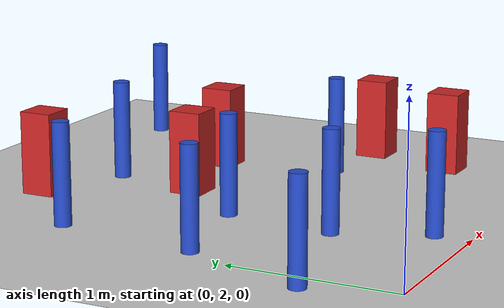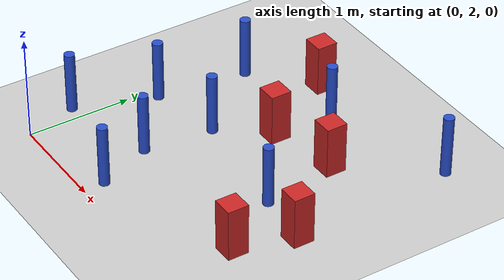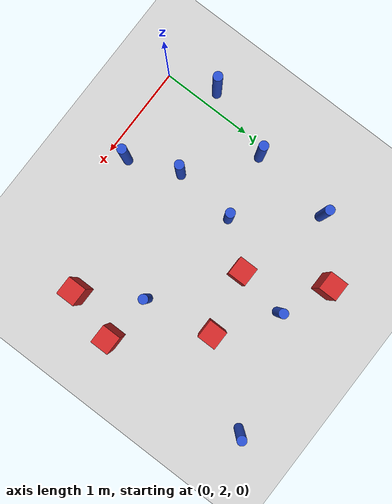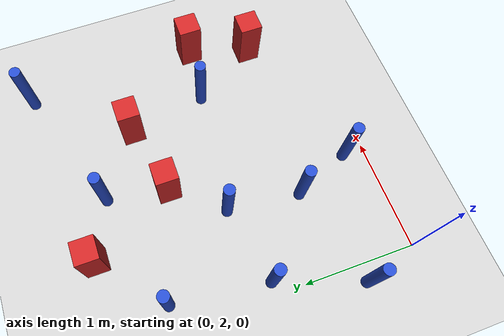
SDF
<sdf version="1.6">
 <world name="default">
  <model name="ground_plane">
   <static>1</static>
   <link name="link">
    <collision name="collision">
     <geometry><plane><normal>0 0 1</normal><size>100 100</size></plane></geometry>
     <surface><friction><ode><mu>100</mu><mu2>50</mu2></ode></friction></surface>
    </collision>
    <visual name="visual">
     <cast_shadows>0</cast_shadows>
     <geometry><plane><normal>0 0 1</normal><size>100 100</size></plane></geometry>
     <material>
      <ambient>1.0 1.0 1.0 1.0</ambient>
      <diffuse>0.8 0.8 0.8 1.0</diffuse>
      <specular>0.01 0.01 0.01 1.000000</specular>
     </material>
    </visual>
   </link>
  </model>
  <model name="square_post_obstacle20">
   <static>true</static>
   <pose>0.76591102103 4.6098551937 8.22691968438e-08 7.2212513382e-06 -7.54495500217e-07 2.29674213826e-05</pose>
   <link name="link">
    <pose>0 0 0.25 0 -0 0</pose>
    <inertial>
     <mass>100</mass>
     <inertia>
      <ixx>0.166667</ixx>
      <ixy>0</ixy>
      <ixz>0</ixz>
      <iyy>0.166667</iyy>
      <iyz>0</iyz>
      <izz>0.166667</izz>
     </inertia>
    </inertial>
    <collision name="collision"><geometry><box><size>.2 .2 .5</size></box></geometry></collision>
    <visual name="visual">
     <geometry><box><size>.2 .2 .5</size></box></geometry>
     <material>
      <script><name>Gazebo/Red</name><uri>file://media/materials/scripts/gazebo.material</uri></script>
     </material>
    </visual>
   </link>
  </model>
  <model name="pole_obstacle21">
   <static>true</static>
   <pose>1.27009599475 4.378853582 2.88873142074e-08 -9.90536689852e-09 4.60219948989e-07 -1.2096599496e-07</pose>
   <link name="link">
    <pose>0 0 0.3 0 -0 0</pose>
    <inertial>
     <mass>1</mass>
     <inertia><ixx>0.145833</ixx><ixy>0</ixy><ixz>0</ixz><iyy>0.145833</iyy><iyz>0</iyz><izz>0.125</izz></inertia>
    </inertial>
    <collision name="collision">
     <geometry><cylinder><radius>0.05</radius><length>.6</length></cylinder></geometry>
    </collision>
    <visual name="visual">
     <geometry><cylinder><radius>0.05</radius><length>.6</length></cylinder></geometry>
     <material>
      <script><name>Gazebo/Blue</name><uri>file://media/materials/scripts/gazebo.material</uri></script>
     </material>
    </visual>
   </link>
  </model>
  <model name="square_post_obstacle34">
   <static>true</static>
   <pose>2.49851427638 3.19317485091 8.22691968438e-08 7.2212513382e-06 -7.54495500217e-07 2.29674213826e-05</pose>
   <link name="link">
    <pose>0 0 0.25 0 -0 0</pose>
    <inertial>
     <mass>100</mass>
     <inertia>
      <ixx>0.166667</ixx>
      <ixy>0</ixy>
      <ixz>0</ixz>
      <iyy>0.166667</iyy>
      <iyz>0</iyz>
      <izz>0.166667</izz>
     </inertia>
    </inertial>
    <collision name="collision"><geometry><box><size>.2 .2 .5</size></box></geometry></collision>
    <visual name="visual">
     <geometry><box><size>.2 .2 .5</size></box></geometry>
     <material>
      <script><name>Gazebo/Red</name><uri>file://media/materials/scripts/gazebo.material</uri></script>
     </material>
    </visual>
   </link>
  </model>
  <model name="pole_obstacle30">
   <static>true</static>
   <pose>0.820039946281 3.40295459279 2.88873142074e-08 -9.90536689636e-09 4.60219948994e-07 -1.20965994958e-07</pose>
   <link name="link">
    <pose>0 0 0.3 0 -0 0</pose>
    <inertial>
     <mass>1</mass>
     <inertia><ixx>0.145833</ixx><ixy>0</ixy><ixz>0</ixz><iyy>0.145833</iyy><iyz>0</iyz><izz>0.125</izz></inertia>
    </inertial>
    <collision name="collision">
     <geometry><cylinder><radius>0.05</radius><length>.6</length></cylinder></geometry>
    </collision>
    <visual name="visual">
     <geometry><cylinder><radius>0.05</radius><length>.6</length></cylinder></geometry>
     <material>
      <script><name>Gazebo/Blue</name><uri>file://media/materials/scripts/gazebo.material</uri></script>
     </material>
    </visual>
   </link>
  </model>
  <model name="pole_obstacle44">
   <static>true</static>
   <pose>0.751218466088 2.73740976181 2.88873142074e-08 -9.90536689636e-09 4.60219948994e-07 -1.20965994958e-07</pose>
   <link name="link">
    <pose>0 0 0.3 0 -0 0</pose>
    <inertial>
     <mass>1</mass>
     <inertia><ixx>0.145833</ixx><ixy>0</ixy><ixz>0</ixz><iyy>0.145833</iyy><iyz>0</iyz><izz>0.125</izz></inertia>
    </inertial>
    <collision name="collision">
     <geometry><cylinder><radius>0.05</radius><length>.6</length></cylinder></geometry>
    </collision>
    <visual name="visual">
     <geometry><cylinder><radius>0.05</radius><length>.6</length></cylinder></geometry>
     <material>
      <script><name>Gazebo/Blue</name><uri>file://media/materials/scripts/gazebo.material</uri></script>
     </material>
    </visual>
   </link>
  </model>
  <model name="pole_obstacle104">
   <static>true</static>
   <pose>0.222548389686 4.13478257113 2.88873142074e-08 -9.90536689491e-09 4.60219948997e-07 -1.20965994955e-07</pose>
   <link name="link">
    <pose>0 0 0.3 0 -0 0</pose>
    <inertial>
     <mass>1</mass>
     <inertia><ixx>0.145833</ixx><ixy>0</ixy><ixz>0</ixz><iyy>0.145833</iyy><iyz>0</iyz><izz>0.125</izz></inertia>
    </inertial>
    <collision name="collision">
     <geometry><cylinder><radius>0.05</radius><length>.6</length></cylinder></geometry>
    </collision>
    <visual name="visual">
     <geometry><cylinder><radius>0.05</radius><length>.6</length></cylinder></geometry>
     <material>
      <script><name>Gazebo/Blue</name><uri>file://media/materials/scripts/gazebo.material</uri></script>
     </material>
    </visual>
   </link>
  </model>
  <model name="pole_obstacle123">
   <static>true</static>
   <pose>1.9674485187 3.24825887018 2.88873142074e-08 -9.90536689941e-09 4.60219948987e-07 -1.20965994961e-07</pose>
   <link name="link">
    <pose>0 0 0.3 0 -0 0</pose>
    <inertial>
     <mass>1</mass>
     <inertia><ixx>0.145833</ixx><ixy>0</ixy><ixz>0</ixz><iyy>0.145833</iyy><iyz>0</iyz><izz>0.125</izz></inertia>
    </inertial>
    <collision name="collision">
     <geometry><cylinder><radius>0.05</radius><length>.6</length></cylinder></geometry>
    </collision>
    <visual name="visual">
     <geometry><cylinder><radius>0.05</radius><length>.6</length></cylinder></geometry>
     <material>
      <script><name>Gazebo/Blue</name><uri>file://media/materials/scripts/gazebo.material</uri></script>
     </material>
    </visual>
   </link>
  </model>
  <model name="square_post_obstacle120">
   <static>true</static>
   <pose>1.83925740022 3.97344979141 8.22691968438e-08 7.2212513382e-06 -7.54495500217e-07 2.29674213826e-05</pose>
   <link name="link">
    <pose>0 0 0.25 0 -0 0</pose>
    <inertial>
     <mass>100</mass>
     <inertia>
      <ixx>0.166667</ixx>
      <ixy>0</ixy>
      <ixz>0</ixz>
      <iyy>0.166667</iyy>
      <iyz>0</iyz>
      <izz>0.166667</izz>
     </inertia>
    </inertial>
    <collision name="collision"><geometry><box><size>.2 .2 .5</size></box></geometry></collision>
    <visual name="visual">
     <geometry><box><size>.2 .2 .5</size></box></geometry>
     <material>
      <script><name>Gazebo/Red</name><uri>file://media/materials/scripts/gazebo.material</uri></script>
     </material>
    </visual>
   </link>
  </model>
  <model name="square_post_obstacle125">
   <static>true</static>
   <pose>2.33424580545 2.65014800814 8.22691968438e-08 7.2212513382e-06 -7.54495500217e-07 2.29674213826e-05</pose>
   <link name="link">
    <pose>0 0 0.25 0 -0 0</pose>
    <inertial>
     <mass>100</mass>
     <inertia>
      <ixx>0.166667</ixx>
      <ixy>0</ixy>
      <ixz>0</ixz>
      <iyy>0.166667</iyy>
      <iyz>0</iyz>
      <izz>0.166667</izz>
     </inertia>
    </inertial>
    <collision name="collision"><geometry><box><size>.2 .2 .5</size></box></geometry></collision>
    <visual name="visual">
     <geometry><box><size>.2 .2 .5</size></box></geometry>
     <material>
      <script><name>Gazebo/Red</name><uri>file://media/materials/scripts/gazebo.material</uri></script>
     </material>
    </visual>
   </link>
  </model>
  <model name="square_post_obstacle127">
   <static>true</static>
   <pose>1.17988550281 3.83633537052 8.22691968438e-08 7.2212513382e-06 -7.54495500217e-07 2.29674213826e-05</pose>
   <link name="link">
    <pose>0 0 0.25 0 -0 0</pose>
    <inertial>
     <mass>100</mass>
     <inertia>
      <ixx>0.166667</ixx>
      <ixy>0</ixy>
      <ixz>0</ixz>
      <iyy>0.166667</iyy>
      <iyz>0</iyz>
      <izz>0.166667</izz>
     </inertia>
    </inertial>
    <collision name="collision"><geometry><box><size>.2 .2 .5</size></box></geometry></collision>
    <visual name="visual">
     <geometry><box><size>.2 .2 .5</size></box></geometry>
     <material>
      <script><name>Gazebo/Red</name><uri>file://media/materials/scripts/gazebo.material</uri></script>
     </material>
    </visual>
   </link>
  </model>
  <model name="pole_obstacle144">
   <static>true</static>
   <pose>0.964892750727 2.21010918374 2.88873142074e-08 -9.90536689802e-09 4.6021994899e-07 -1.2096599496e-07</pose>
   <link name="link">
    <pose>0 0 0.3 0 -0 0</pose>
    <inertial>
     <mass>1</mass>
     <inertia><ixx>0.145833</ixx><ixy>0</ixy><ixz>0</ixz><iyy>0.145833</iyy><iyz>0</iyz><izz>0.125</izz></inertia>
    </inertial>
    <collision name="collision">
     <geometry><cylinder><radius>0.05</radius><length>.6</length></cylinder></geometry>
    </collision>
    <visual name="visual">
     <geometry><cylinder><radius>0.05</radius><length>.6</length></cylinder></geometry>
     <material>
      <script><name>Gazebo/Blue</name><uri>file://media/materials/scripts/gazebo.material</uri></script>
     </material>
    </visual>
   </link>
  </model>
  <model name="pole_obstacle167">
   <static>true</static>
   <pose>2.44366150699 4.78167556485 2.88873142074e-08 -9.90536689859e-09 4.60219948989e-07 -1.20965994961e-07</pose>
   <link name="link">
    <pose>0 0 0.3 0 -0 0</pose>
    <inertial>
     <mass>1</mass>
     <inertia><ixx>0.145833</ixx><ixy>0</ixy><ixz>0</ixz><iyy>0.145833</iyy><iyz>0</iyz><izz>0.125</izz></inertia>
    </inertial>
    <collision name="collision">
     <geometry><cylinder><radius>0.05</radius><length>.6</length></cylinder></geometry>
    </collision>
    <visual name="visual">
     <geometry><cylinder><radius>0.05</radius><length>.6</length></cylinder></geometry>
     <material>
      <script><name>Gazebo/Blue</name><uri>file://media/materials/scripts/gazebo.material</uri></script>
     </material>
    </visual>
   </link>
  </model>
  <model name="pole_obstacle180">
   <static>true</static>
   <pose>0.116098580354 3.26587579567 2.88873142074e-08 -9.905366898e-09 4.6021994899e-07 -1.2096599496e-07</pose>
   <link name="link">
    <pose>0 0 0.3 0 -0 0</pose>
    <inertial>
     <mass>1</mass>
     <inertia><ixx>0.145833</ixx><ixy>0</ixy><ixz>0</ixz><iyy>0.145833</iyy><iyz>0</iyz><izz>0.125</izz></inertia>
    </inertial>
    <collision name="collision">
     <geometry><cylinder><radius>0.05</radius><length>.6</length></cylinder></geometry>
    </collision>
    <visual name="visual">
     <geometry><cylinder><radius>0.05</radius><length>.6</length></cylinder></geometry>
     <material>
      <script><name>Gazebo/Blue</name><uri>file://media/materials/scripts/gazebo.material</uri></script>
     </material>
    </visual>
   </link>
  </model>
  <model name="pole_obstacle198">
   <static>true</static>
   <pose>-0.150952202035 2.51015461175 2.88873142074e-08 -9.9053669244e-09 4.60219948928e-07 -1.20965994988e-07</pose>
   <link name="link">
    <pose>0 0 0.3 0 -0 0</pose>
    <inertial>
     <mass>1</mass>
     <inertia><ixx>0.145833</ixx><ixy>0</ixy><ixz>0</ixz><iyy>0.145833</iyy><iyz>0</iyz><izz>0.125</izz></inertia>
    </inertial>
    <collision name="collision">
     <geometry><cylinder><radius>0.05</radius><length>.6</length></cylinder></geometry>
    </collision>
    <visual name="visual">
     <geometry><cylinder><radius>0.05</radius><length>.6</length></cylinder></geometry>
     <material>
      <script><name>Gazebo/Blue</name><uri>file://media/materials/scripts/gazebo.material</uri></script>
     </material>
    </visual>
   </link>
  </model>
 </world>
</sdf>
